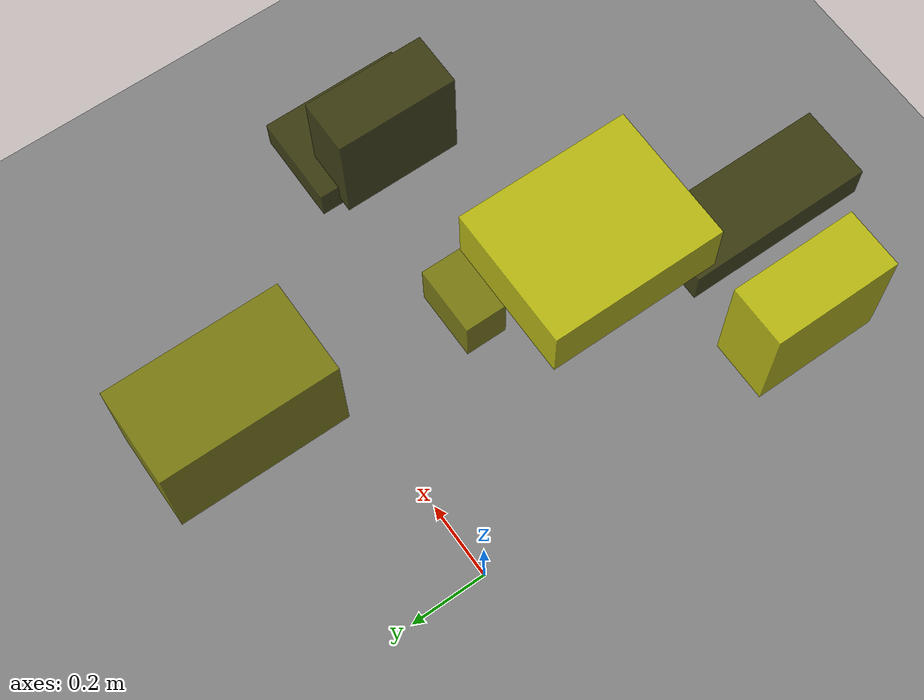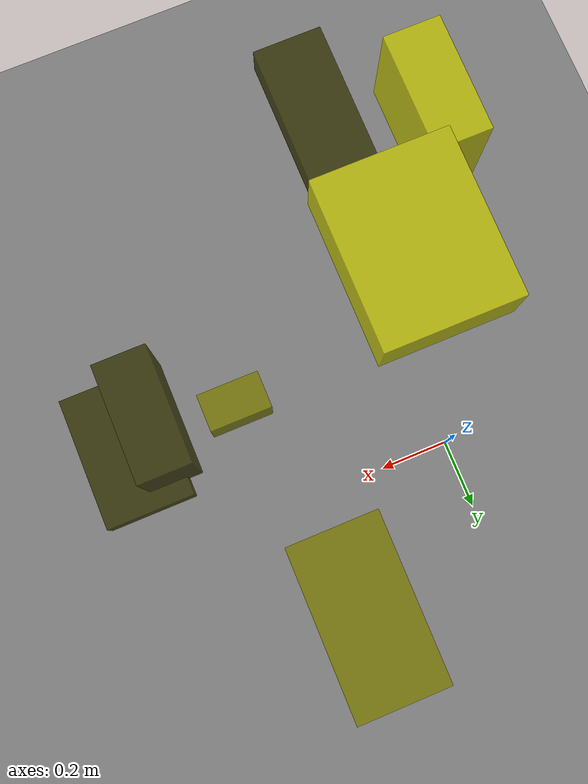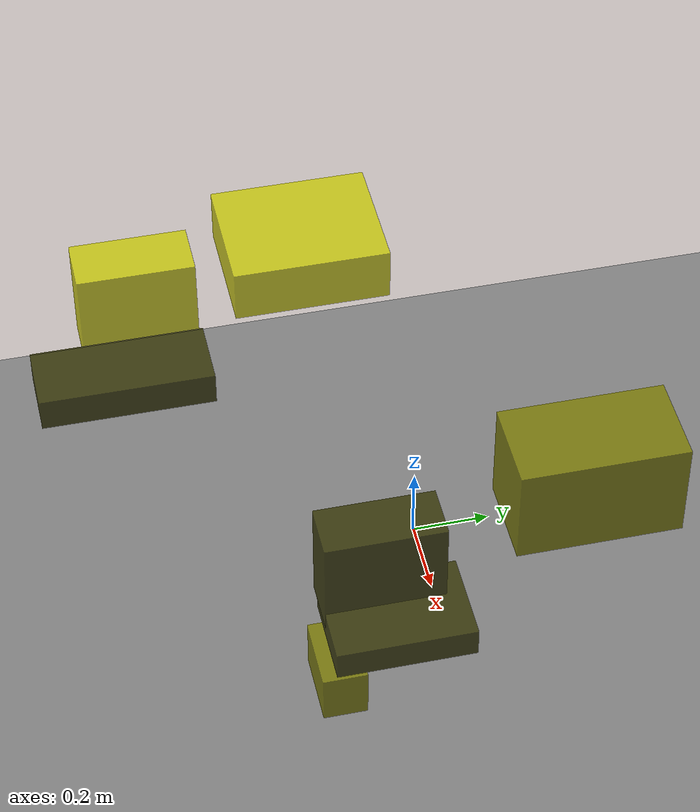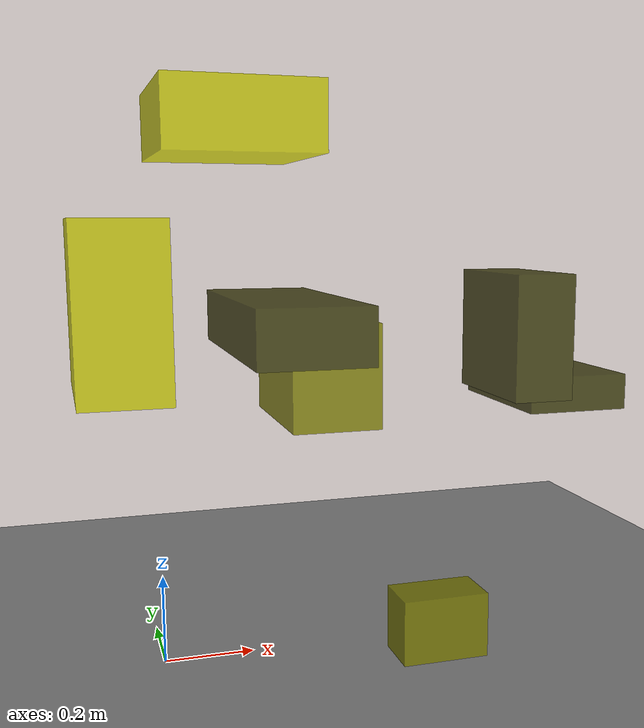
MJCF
<?xml version="1.0"?>
<mujoco model="obstacle_scene">
  <compiler angle="radian" coordinate="local"/>
  <option timestep="0.001" gravity="0 0 -9.81"/>

  <asset>
    <material name="obstacle_mat" rgba="0.8 0.8 0.0 0.8"/>
    <material name="ground_mat" rgba="0.5 0.5 0.5 1"/>
  </asset>

  <worldbody>
    <!-- Ground plane -->
    <geom name="ground" type="plane" size="3 3 0.1" material="ground_mat"/>

    <!-- Obstacles -->
    <body name="obstacle_0" pos="0.801763 -0.238819 0.637562">
      <geom name="obs_0" type="box" size="0.105465 0.158491 0.035881" rgba="0.2 0.2 0.0 0.8"/>
    </body>
    <body name="obstacle_1" pos="0.440462 0.311731 0.610218">
      <geom name="obs_1" type="box" size="0.111461 0.202377 0.130321" rgba="0.5 0.5 0.0 0.8"/>
    </body>
    <body name="obstacle_2" pos="-0.117238 -0.661383 0.855344">
      <geom name="obs_2" type="box" size="0.066004 0.138536 0.128859" rgba="0.8 0.8 0.0 0.8"/>
    </body>
    <body name="obstacle_3" pos="0.118040 -0.728428 0.830099">
      <geom name="obs_3" type="box" size="0.081221 0.202221 0.040593" rgba="0.2 0.2 0.0 0.8"/>
    </body>
    <body name="obstacle_4" pos="0.531817 -0.317553 0.157253">
      <geom name="obs_4" type="box" size="0.091155 0.054510 0.067816" rgba="0.5 0.5 0.0 0.8"/>
    </body>
    <body name="obstacle_5" pos="0.116550 -0.306591 1.157160">
      <geom name="obs_5" type="box" size="0.140610 0.174386 0.062208" rgba="0.8 0.8 0.0 0.8"/>
    </body>
    <body name="obstacle_6" pos="0.724006 -0.260378 0.751837">
      <geom name="obs_6" type="box" size="0.061990 0.137145 0.126584" rgba="0.2 0.2 0.0 0.8"/>
    </body>
  </worldbody>
</mujoco>
